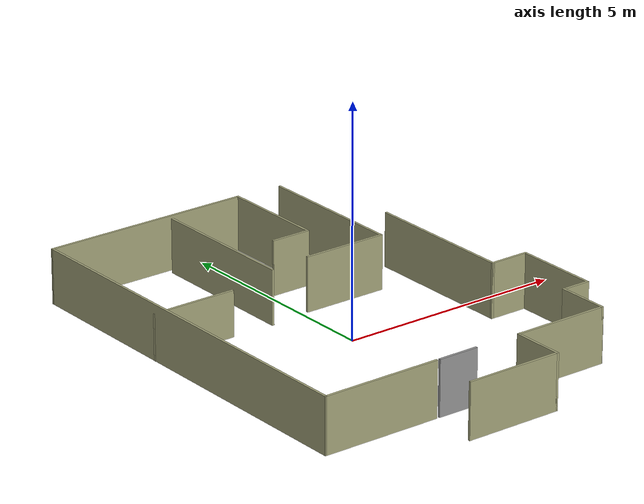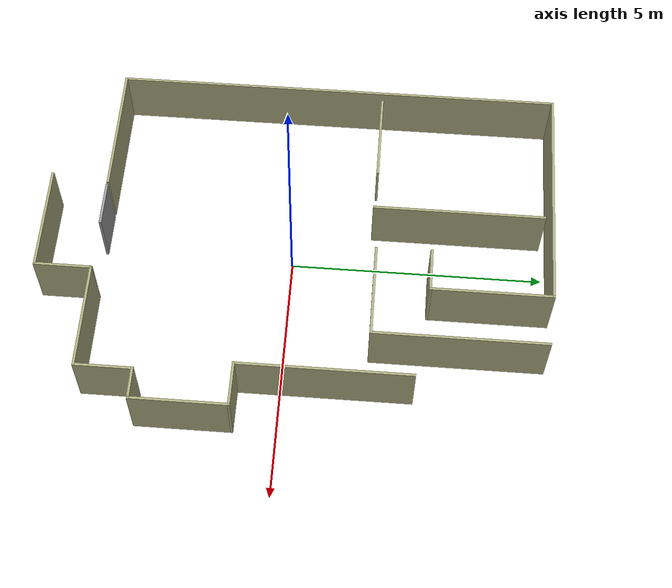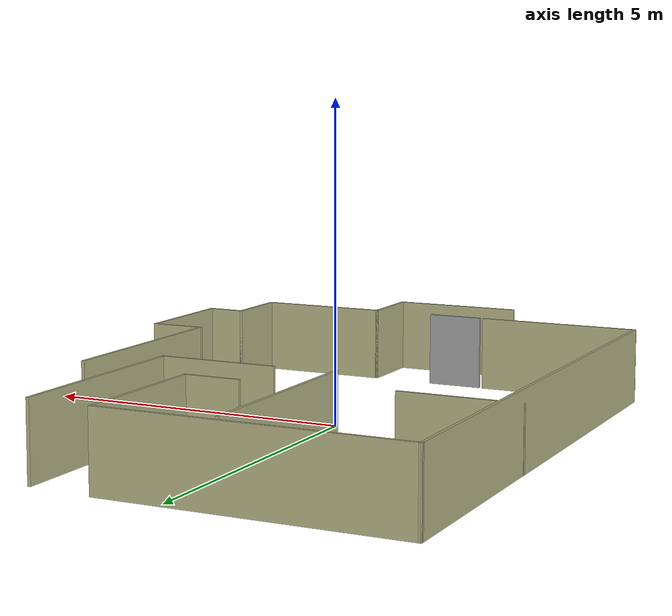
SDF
<?xml version='1.0'?>
<sdf version='1.6'>
  <model name='walls'>
    <pose frame=''>0.070483 0.106017 0 0 -0 0</pose>
    <link name='Door_4'>
      <collision name='Door_4_Collision'>
        <geometry>
          <box>
            <size>0.906 0.05 1.2</size>
          </box>
        </geometry>
        <pose frame=''>0 0 0.6 0 -0 0</pose>
      </collision>
      <visual name='Door_4_Visual'>
        <pose frame=''>0 0 0.6 0 -0 0</pose>
        <geometry>
          <box>
            <size>0.906 0.05 1.2</size>
          </box>
        </geometry>
        <material>
          <script>
            <uri>file://media/materials/scripts/gazebo.material</uri>
            <name>Gazebo/Grey</name>
          </script>
        </material>
      </visual>
      <pose frame=''>-0.514741 -3.87011 0 0 0 -0.000969</pose>
    </link>
    <link name='Wall_19'>
      <collision name='Wall_19_Collision'>
        <geometry>
          <box>
            <size>1.9 0.05 1</size>
          </box>
        </geometry>
        <pose frame=''>0 0 0.5 0 -0 0</pose>
      </collision>
      <visual name='Wall_19_Visual'>
        <pose frame=''>0 0 0.5 0 -0 0</pose>
        <geometry>
          <box>
            <size>1.9 0.05 1</size>
          </box>
        </geometry>
        <material>
          <script>
            <uri>file://media/materials/scripts/gazebo.material</uri>
            <name>Gazebo/Grey</name>
          </script>
          <ambient>0.666667 0.666667 0.498039 1</ambient>
        </material>
      </visual>
      <pose frame=''>-2.73248 1.48798 0 0 -0 0</pose>
    </link>
    <link name='Wall_21'>
      <collision name='Wall_21_Collision'>
        <geometry>
          <box>
            <size>2.15 0.05 1.2</size>
          </box>
        </geometry>
        <pose frame=''>0 0 0.6 0 -0 0</pose>
      </collision>
      <visual name='Wall_21_Visual'>
        <pose frame=''>0 0 0.6 0 -0 0</pose>
        <geometry>
          <box>
            <size>2.15 0.05 1.2</size>
          </box>
        </geometry>
        <material>
          <script>
            <uri>file://media/materials/scripts/gazebo.material</uri>
            <name>Gazebo/Grey</name>
          </script>
          <ambient>0.666667 0.666667 0.498039 1</ambient>
        </material>
      </visual>
      <pose frame=''>-0.092483 -4.98802 0 0 -0 0</pose>
    </link>
    <link name='Wall_22'>
      <collision name='Wall_22_Collision'>
        <geometry>
          <box>
            <size>1.15 0.05 1.2</size>
          </box>
        </geometry>
        <pose frame=''>0 0 0.6 0 -0 0</pose>
      </collision>
      <visual name='Wall_22_Visual'>
        <pose frame=''>0 0 0.6 0 -0 0</pose>
        <geometry>
          <box>
            <size>1.15 0.05 1.2</size>
          </box>
        </geometry>
        <material>
          <script>
            <uri>file://media/materials/scripts/gazebo.material</uri>
            <name>Gazebo/Grey</name>
          </script>
          <ambient>0.666667 0.666667 0.498039 1</ambient>
        </material>
      </visual>
      <pose frame=''>0.957517 -4.43802 0 0 -0 1.5708</pose>
    </link>
    <link name='Wall_23'>
      <collision name='Wall_23_Collision'>
        <geometry>
          <box>
            <size>2.15 0.05 1.2</size>
          </box>
        </geometry>
        <pose frame=''>0 0 0.6 0 -0 0</pose>
      </collision>
      <visual name='Wall_23_Visual'>
        <pose frame=''>0 0 0.6 0 -0 0</pose>
        <geometry>
          <box>
            <size>2.15 0.05 1.2</size>
          </box>
        </geometry>
        <material>
          <script>
            <uri>file://media/materials/scripts/gazebo.material</uri>
            <name>Gazebo/Grey</name>
          </script>
          <ambient>0.666667 0.666667 0.498039 1</ambient>
        </material>
      </visual>
      <pose frame=''>2.00752 -3.88802 0 0 -0 0</pose>
    </link>
    <link name='Wall_24'>
      <collision name='Wall_24_Collision'>
        <geometry>
          <box>
            <size>1.15 0.05 1.2</size>
          </box>
        </geometry>
        <pose frame=''>0 0 0.6 0 -0 0</pose>
      </collision>
      <visual name='Wall_24_Visual'>
        <pose frame=''>0 0 0.6 0 -0 0</pose>
        <geometry>
          <box>
            <size>1.15 0.05 1.2</size>
          </box>
        </geometry>
        <material>
          <script>
            <uri>file://media/materials/scripts/gazebo.material</uri>
            <name>Gazebo/Grey</name>
          </script>
          <ambient>0.666667 0.666667 0.498039 1</ambient>
        </material>
      </visual>
      <pose frame=''>3.05752 -3.33802 0 0 -0 1.5708</pose>
    </link>
    <link name='Wall_25'>
      <collision name='Wall_25_Collision'>
        <geometry>
          <box>
            <size>0.65 0.05 1.2</size>
          </box>
        </geometry>
        <pose frame=''>0 0 0.6 0 -0 0</pose>
      </collision>
      <visual name='Wall_25_Visual'>
        <pose frame=''>0 0 0.6 0 -0 0</pose>
        <geometry>
          <box>
            <size>0.65 0.05 1.2</size>
          </box>
        </geometry>
        <material>
          <script>
            <uri>file://media/materials/scripts/gazebo.material</uri>
            <name>Gazebo/Grey</name>
          </script>
          <ambient>0.666667 0.666667 0.498039 1</ambient>
        </material>
      </visual>
      <pose frame=''>3.35752 -2.78802 0 0 -0 0</pose>
    </link>
    <link name='Wall_26'>
      <collision name='Wall_26_Collision'>
        <geometry>
          <box>
            <size>1.9 0.05 1.2</size>
          </box>
        </geometry>
        <pose frame=''>0 0 0.6 0 -0 0</pose>
      </collision>
      <visual name='Wall_26_Visual'>
        <pose frame=''>0 0 0.6 0 -0 0</pose>
        <geometry>
          <box>
            <size>1.9 0.05 1.2</size>
          </box>
        </geometry>
        <material>
          <script>
            <uri>file://media/materials/scripts/gazebo.material</uri>
            <name>Gazebo/Grey</name>
          </script>
          <ambient>0.666667 0.666667 0.498039 1</ambient>
        </material>
      </visual>
      <pose frame=''>3.65752 -1.86302 0 0 -0 1.5708</pose>
    </link>
    <link name='Wall_27'>
      <collision name='Wall_27_Collision'>
        <geometry>
          <box>
            <size>0.9 0.05 1.2</size>
          </box>
        </geometry>
        <pose frame=''>0 0 0.6 0 -0 0</pose>
      </collision>
      <visual name='Wall_27_Visual'>
        <pose frame=''>0 0 0.6 0 -0 0</pose>
        <geometry>
          <box>
            <size>0.9 0.05 1.2</size>
          </box>
        </geometry>
        <material>
          <script>
            <uri>file://media/materials/scripts/gazebo.material</uri>
            <name>Gazebo/Grey</name>
          </script>
          <ambient>0.666667 0.666667 0.498039 1</ambient>
        </material>
      </visual>
      <pose frame=''>3.23252 -0.938017 0 0 -0 3.14159</pose>
    </link>
    <link name='Wall_36'>
      <collision name='Wall_36_Collision'>
        <geometry>
          <box>
            <size>1.9 0.05 1.2</size>
          </box>
        </geometry>
        <pose frame=''>0 0 0.6 0 -0 0</pose>
      </collision>
      <visual name='Wall_36_Visual'>
        <pose frame=''>0 0 0.6 0 -0 0</pose>
        <geometry>
          <box>
            <size>1.9 0.05 1.2</size>
          </box>
        </geometry>
        <material>
          <script>
            <uri>file://media/materials/scripts/gazebo.material</uri>
            <name>Gazebo/Grey</name>
          </script>
          <ambient>0.666667 0.666667 0.498039 1</ambient>
        </material>
      </visual>
      <pose frame=''>1.04652 1.55798 0 0 -0 0</pose>
    </link>
    <link name='Wall_48'>
      <collision name='Wall_48_Collision'>
        <geometry>
          <box>
            <size>8.90001 0.05 1.2</size>
          </box>
        </geometry>
        <pose frame=''>0 0 0.6 0 -0 0</pose>
      </collision>
      <visual name='Wall_48_Visual'>
        <pose frame=''>0 0 0.6 0 -0 0</pose>
        <geometry>
          <box>
            <size>8.90001 0.05 1.2</size>
          </box>
        </geometry>
        <material>
          <script>
            <uri>file://media/materials/scripts/gazebo.material</uri>
            <name>Gazebo/Grey</name>
          </script>
          <ambient>0.666667 0.666667 0.498039 1</ambient>
        </material>
      </visual>
      <pose frame=''>-3.65148 0.562983 0 0 -0 1.57215</pose>
    </link>
    <link name='Wall_49'>
      <collision name='Wall_49_Collision'>
        <geometry>
          <box>
            <size>4.65 0.05 1.2</size>
          </box>
        </geometry>
        <pose frame=''>0 0 0.6 0 -0 0</pose>
      </collision>
      <visual name='Wall_49_Visual'>
        <pose frame=''>0 0 0.6 0 -0 0</pose>
        <geometry>
          <box>
            <size>4.65 0.05 1.2</size>
          </box>
        </geometry>
        <material>
          <script>
            <uri>file://media/materials/scripts/gazebo.material</uri>
            <name>Gazebo/Grey</name>
          </script>
          <ambient>0.666667 0.666667 0.498039 1</ambient>
        </material>
      </visual>
      <pose frame=''>-1.35748 4.98798 0 0 -0 0</pose>
    </link>
    <link name='Wall_50'>
      <collision name='Wall_50_Collision'>
        <geometry>
          <box>
            <size>2.4 0.05 1.2</size>
          </box>
        </geometry>
        <pose frame=''>0 0 0.6 0 -0 0</pose>
      </collision>
      <visual name='Wall_50_Visual'>
        <pose frame=''>0 0 0.6 0 -0 0</pose>
        <geometry>
          <box>
            <size>2.4 0.05 1.2</size>
          </box>
        </geometry>
        <material>
          <script>
            <uri>file://media/materials/scripts/gazebo.material</uri>
            <name>Gazebo/Grey</name>
          </script>
          <ambient>0.666667 0.666667 0.498039 1</ambient>
        </material>
      </visual>
      <pose frame=''>0.942517 3.81298 0 0 0 -1.5708</pose>
    </link>
    <link name='Wall_51'>
      <collision name='Wall_51_Collision'>
        <geometry>
          <box>
            <size>0.9 0.05 1.2</size>
          </box>
        </geometry>
        <pose frame=''>0 0 0.6 0 -0 0</pose>
      </collision>
      <visual name='Wall_51_Visual'>
        <pose frame=''>0 0 0.6 0 -0 0</pose>
        <geometry>
          <box>
            <size>0.9 0.05 1.2</size>
          </box>
        </geometry>
        <material>
          <script>
            <uri>file://media/materials/scripts/gazebo.material</uri>
            <name>Gazebo/Grey</name>
          </script>
          <ambient>0.666667 0.666667 0.498039 1</ambient>
        </material>
      </visual>
      <pose frame=''>0.517517 2.63798 0 0 -0 3.14159</pose>
    </link>
    <link name='Wall_53'>
      <collision name='Wall_53_Collision'>
        <geometry>
          <box>
            <size>3.4 0.05 1.2</size>
          </box>
        </geometry>
        <pose frame=''>0 0 0.6 0 -0 0</pose>
      </collision>
      <visual name='Wall_53_Visual'>
        <pose frame=''>0 0 0.6 0 -0 0</pose>
        <geometry>
          <box>
            <size>3.4 0.05 1.2</size>
          </box>
        </geometry>
        <material>
          <script>
            <uri>file://media/materials/scripts/gazebo.material</uri>
            <name>Gazebo/Grey</name>
          </script>
          <ambient>0.666667 0.666667 0.498039 1</ambient>
        </material>
      </visual>
      <pose frame=''>-0.835483 3.14198 0 0 -0 1.5708</pose>
    </link>
    <link name='Wall_58'>
      <collision name='Wall_58_Collision'>
        <geometry>
          <box>
            <size>3.4 0.05 1.2</size>
          </box>
        </geometry>
        <pose frame=''>0 0 0.6 0 -0 0</pose>
      </collision>
      <visual name='Wall_58_Visual'>
        <pose frame=''>0 0 0.6 0 -0 0</pose>
        <geometry>
          <box>
            <size>3.4 0.05 1.2</size>
          </box>
        </geometry>
        <material>
          <script>
            <uri>file://media/materials/scripts/gazebo.material</uri>
            <name>Gazebo/Grey</name>
          </script>
          <ambient>0.666667 0.666667 0.498039 1</ambient>
        </material>
      </visual>
      <pose frame=''>1.97152 3.23298 0 0 -0 1.5708</pose>
    </link>
    <link name='Wall_61'>
      <collision name='Wall_61_Collision'>
        <geometry>
          <box>
            <size>2.65 0.05 1.2</size>
          </box>
        </geometry>
        <pose frame=''>0 0 0.6 0 -0 0</pose>
      </collision>
      <visual name='Wall_61_Visual'>
        <pose frame=''>0 0 0.6 0 -0 0</pose>
        <geometry>
          <box>
            <size>2.65 0.05 1.2</size>
          </box>
        </geometry>
        <material>
          <script>
            <uri>file://media/materials/scripts/gazebo.material</uri>
            <name>Gazebo/Grey</name>
          </script>
          <ambient>0.666667 0.666667 0.498039 1</ambient>
        </material>
      </visual>
      <pose frame=''>-2.34548 -3.86202 0 0 -0 0</pose>
    </link>
    <link name='Wall_63'>
      <collision name='Wall_63_Collision'>
        <geometry>
          <box>
            <size>3.4 0.05 1.2</size>
          </box>
        </geometry>
        <pose frame=''>0 0 0.6 0 -0 0</pose>
      </collision>
      <visual name='Wall_63_Visual'>
        <pose frame=''>0 0 0.6 0 -0 0</pose>
        <geometry>
          <box>
            <size>3.4 0.05 1.2</size>
          </box>
        </geometry>
        <material>
          <script>
            <uri>file://media/materials/scripts/gazebo.material</uri>
            <name>Gazebo/Grey</name>
          </script>
          <ambient>0.666667 0.666667 0.498039 1</ambient>
        </material>
      </visual>
      <pose frame=''>2.80752 0.736983 0 0 -0 1.5708</pose>
    </link>
    <static>1</static>
  </model>
</sdf>
